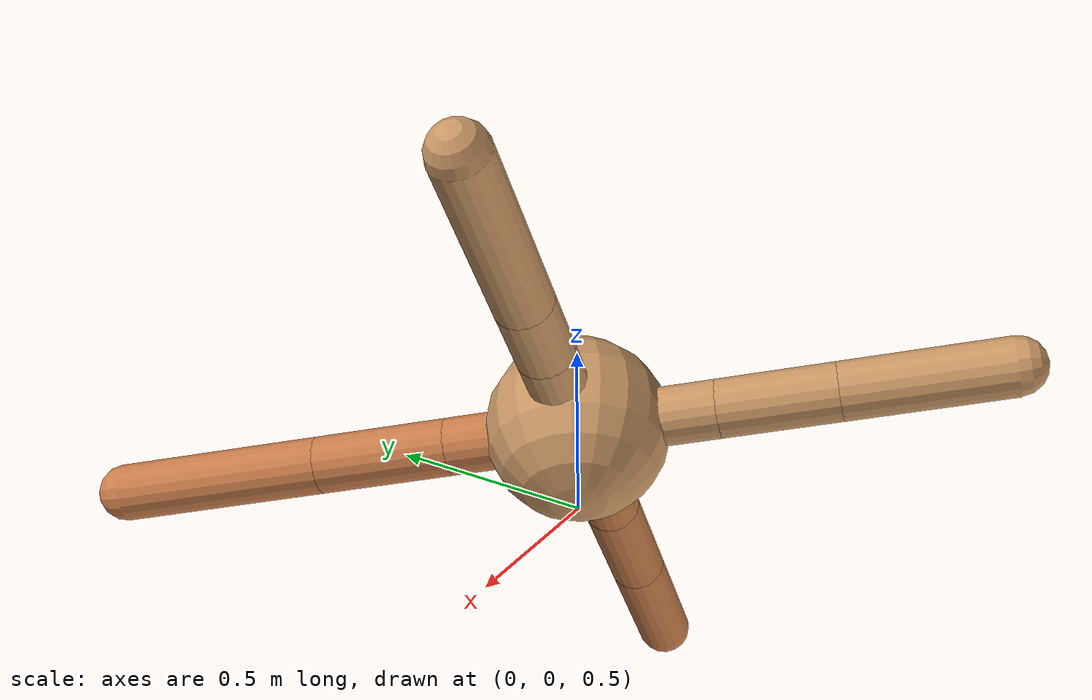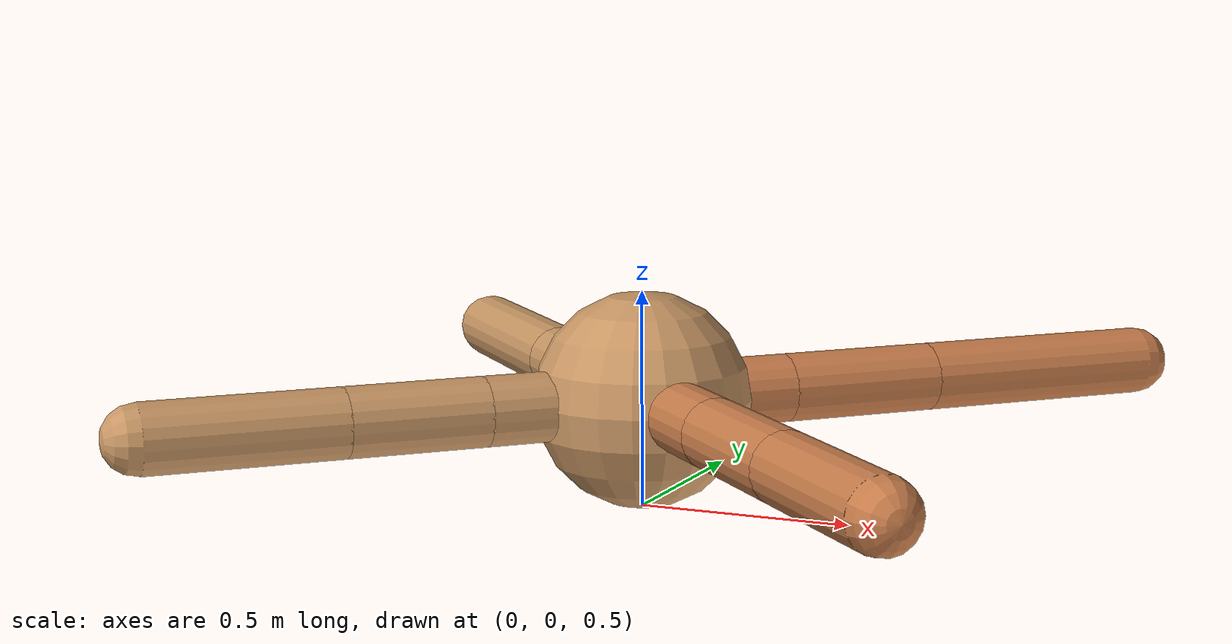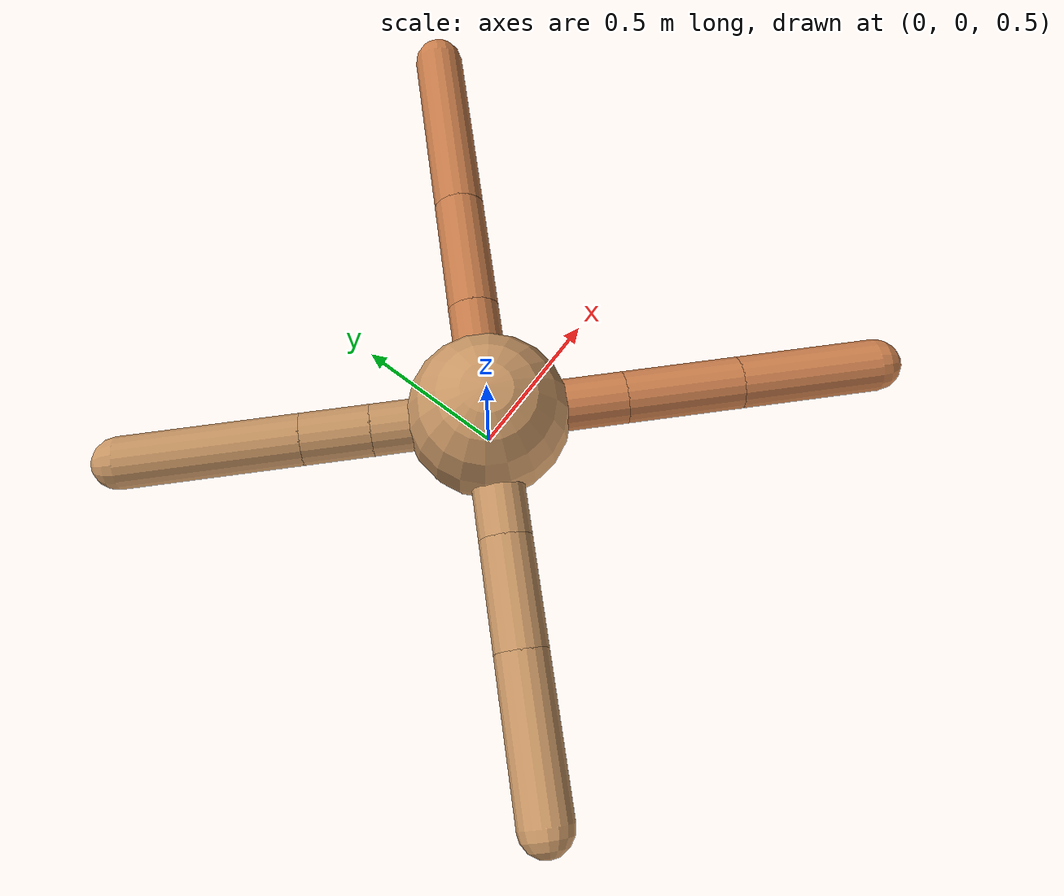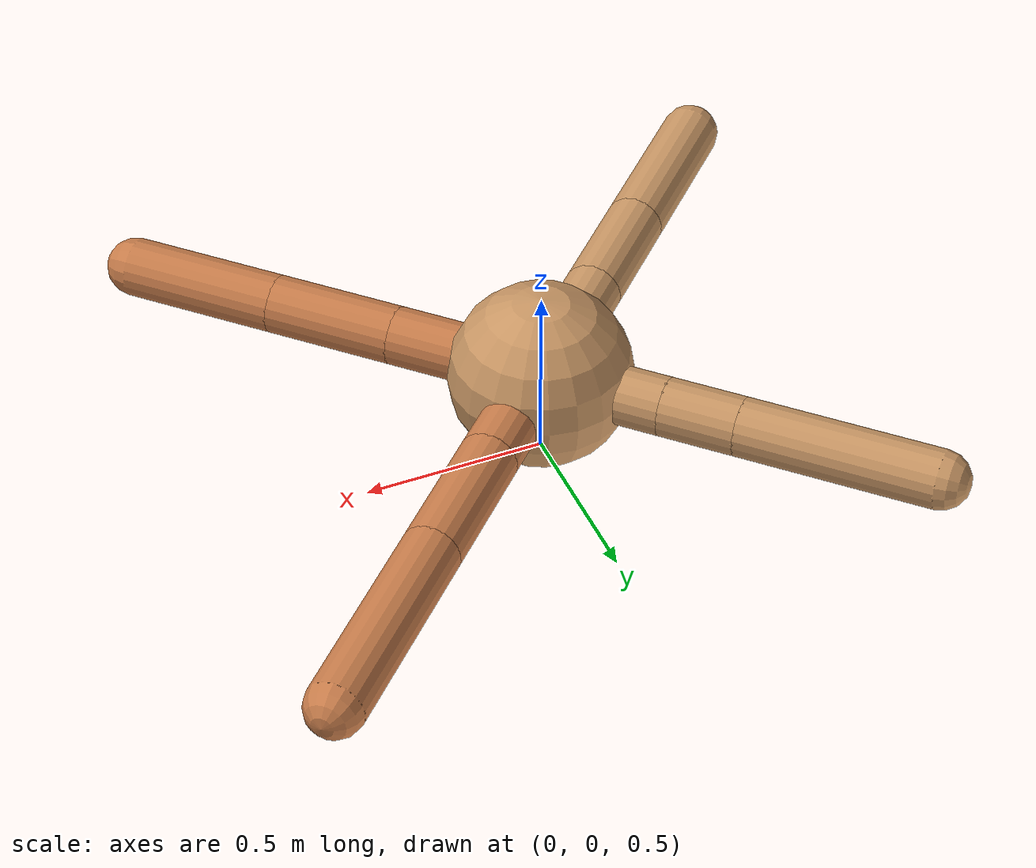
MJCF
<mujoco model="ant">
  <compiler angle="degree" coordinate="local" inertiafromgeom="true" />
  <option integrator="RK4" timestep="0.01" />
  <custom>
    <numeric data="0.0 0.0 0.55 1.0 0.0 0.0 0.0 0.0 1.0 0.0 -1.0 0.0 -1.0 0.0 1.0" name="init_qpos" />
  </custom>
  <default>
    <joint armature="1" damping="1" limited="true" />
    <geom conaffinity="0" condim="3" density="5.0" friction="1.5 0.1 0.1" margin="0.01" rgba="0.8 0.6 0.4 1" />
  </default>
  <worldbody>
    <body name="torso" pos="0 0 0.75">
      <geom name="torso_geom" pos="0 0 0" size="0.25" type="sphere" />

      <body name="front_left_leg" pos="0 0 0">
        <geom fromto="0.0 0.0 0.0 0.25356908343384127 0.25356908343384127 0.0" name="aux_1_geom" size="0.08" type="capsule" rgba=".8 .5 .3 1" />
        <body name="aux_1" pos="0.25356908343384127 0.25356908343384127 0.0">
          <joint axis="0 0 1" name="hip_1" pos="0.0 0.0 0.0" range="-40 40" type="hinge" />
          <geom fromto="0.0 0.0 0.0 0.26383283028120913 0.26383283028120913 0.0" name="left_leg_geom" size="0.08" type="capsule" rgba=".8 .5 .3 1" />
          <body pos="0.26383283028120913 0.26383283028120913 0.0" name="front_left_foot">
            <joint axis="-1 1 0" name="ankle_1" pos="0.0 0.0 0.0" range="30 100" type="hinge" />
            <geom fromto="0.0 0.0 0.0 0.4113806352898712 0.4113806352898712 0.0" name="left_ankle_geom" size="0.08" type="capsule" rgba=".8 .5 .3 1" />
          </body>
        </body>
      </body>
      <body name="front_right_leg" pos="0 0 0">
        <geom fromto="0.0 0.0 0.0 -0.2480941913892965 0.2480941913892965 0.0" name="aux_2_geom" size="0.08" type="capsule" />
        <body name="aux_2" pos="-0.2480941913892965 0.2480941913892965 0.0">
          <joint axis="0 0 1" name="hip_2" pos="0.0 0.0 0.0" range="-40 40" type="hinge" />
          <geom fromto="0.0 0.0 0.0 -0.14815091665974303 0.14815091665974303 0.0" name="right_leg_geom" size="0.08" type="capsule" />
          <body pos="-0.14815091665974303 0.14815091665974303 0.0" name="front_right_foot">
            <joint axis="1 1 0" name="ankle_2" pos="0.0 0.0 0.0" range="-100 -30" type="hinge" />
            <geom fromto="0.0 0.0 0.0 -0.3839028334756185 0.3839028334756185 0.0" name="right_ankle_geom" size="0.08" type="capsule" />
          </body>
        </body>
      </body>
      <body name="left_back_leg" pos="0 0 0">
        <geom fromto="0.0 0.0 0.0 -0.268746620887201 -0.268746620887201 0.0" name="aux_3_geom" size="0.08" type="capsule" />
        <body name="aux_3" pos="-0.268746620887201 -0.268746620887201 0.0">
          <joint axis="0 0 1" name="hip_3" pos="0.0 0.0 0.0" range="-40 40" type="hinge" />
          <geom fromto="0.0 0.0 0.0 -0.2265411434207965 -0.2265411434207965 0.0" name="back_leg_geom" size="0.08" type="capsule" />
          <body pos="-0.2265411434207965 -0.2265411434207965 0.0" name="left_back_foot">
            <joint axis="-1 1 0" name="ankle_3" pos="0.0 0.0 0.0" range="-100 -30" type="hinge" />
            <geom fromto="0.0 0.0 0.0 -0.3176318520540544 -0.3176318520540544 0.0" name="third_ankle_geom" size="0.08" type="capsule" />
          </body>
        </body>
      </body>
      <body name="right_back_leg" pos="0 0 0">
        <geom fromto="0.0 0.0 0.0 0.2958618543802597 -0.2958618543802597 0.0" name="aux_4_geom" size="0.08" type="capsule" rgba=".8 .5 .3 1" />
        <body name="aux_4" pos="0.2958618543802597 -0.2958618543802597 0.0">
          <joint axis="0 0 1" name="hip_4" pos="0.0 0.0 0.0" range="-40 40" type="hinge" />
          <geom fromto="0.0 0.0 0.0 0.24993779435425856 -0.24993779435425856 0.0" name="rightback_leg_geom" size="0.08" type="capsule" rgba=".8 .5 .3 1" />
          <body pos="0.24993779435425856 -0.24993779435425856 0.0" name="right_back_foot">
            <joint axis="1 1 0" name="ankle_4" pos="0.0 0.0 0.0" range="30 100" type="hinge" />
            <geom fromto="0.0 0.0 0.0 0.30079364354460036 -0.30079364354460036 0.0" name="fourth_ankle_geom" size="0.08" type="capsule" rgba=".8 .5 .3 1" />
          </body>
        </body>
      </body>
    </body>
  </worldbody>
  <actuator>
    <motor ctrllimited="true" ctrlrange="-1.0 1.0" joint="hip_4" gear="150" />
    <motor ctrllimited="true" ctrlrange="-1.0 1.0" joint="ankle_4" gear="150" />
    <motor ctrllimited="true" ctrlrange="-1.0 1.0" joint="hip_1" gear="150" />
    <motor ctrllimited="true" ctrlrange="-1.0 1.0" joint="ankle_1" gear="150" />
    <motor ctrllimited="true" ctrlrange="-1.0 1.0" joint="hip_2" gear="150" />
    <motor ctrllimited="true" ctrlrange="-1.0 1.0" joint="ankle_2" gear="150" />
    <motor ctrllimited="true" ctrlrange="-1.0 1.0" joint="hip_3" gear="150" />
    <motor ctrllimited="true" ctrlrange="-1.0 1.0" joint="ankle_3" gear="150" />
  </actuator>
</mujoco>
